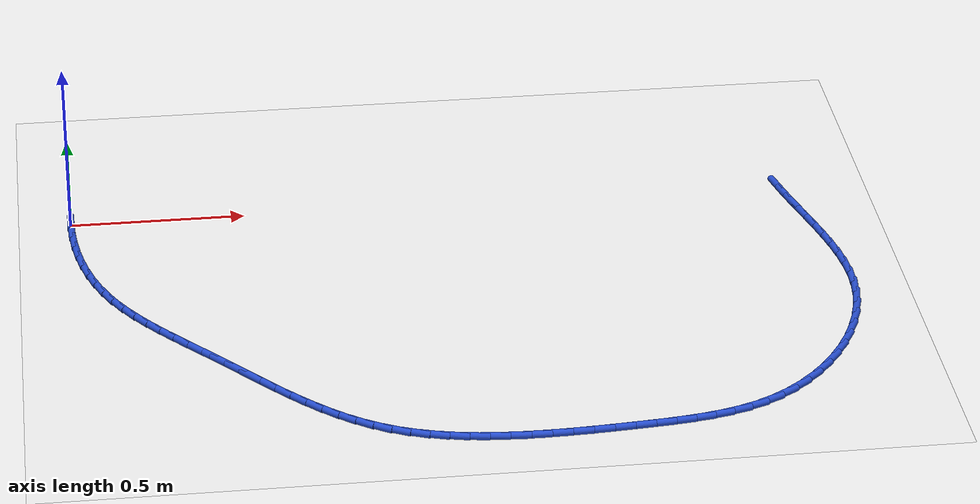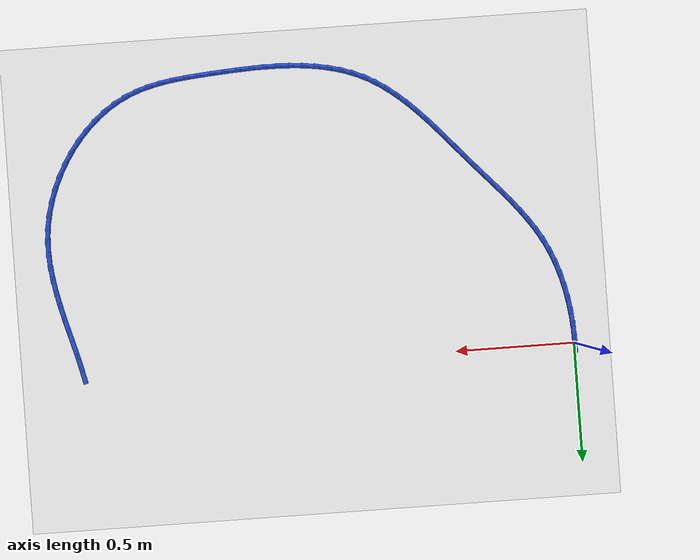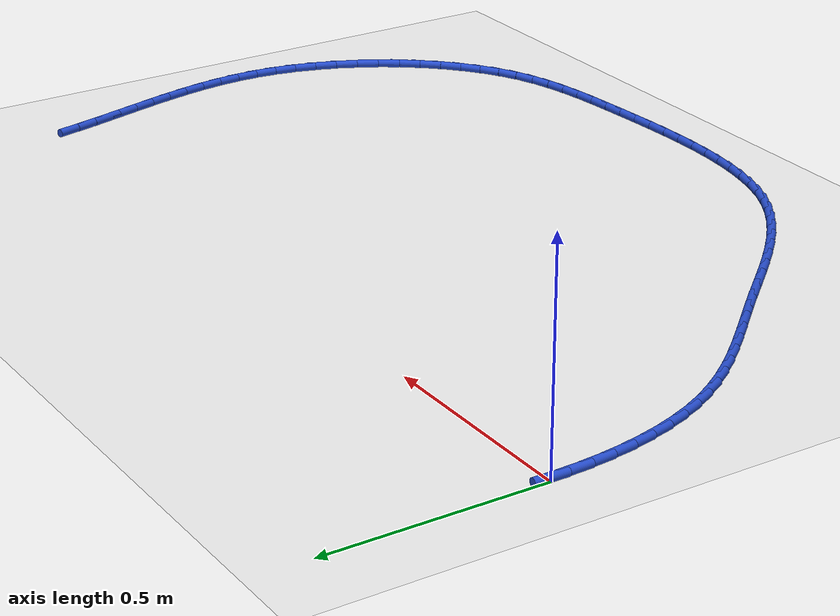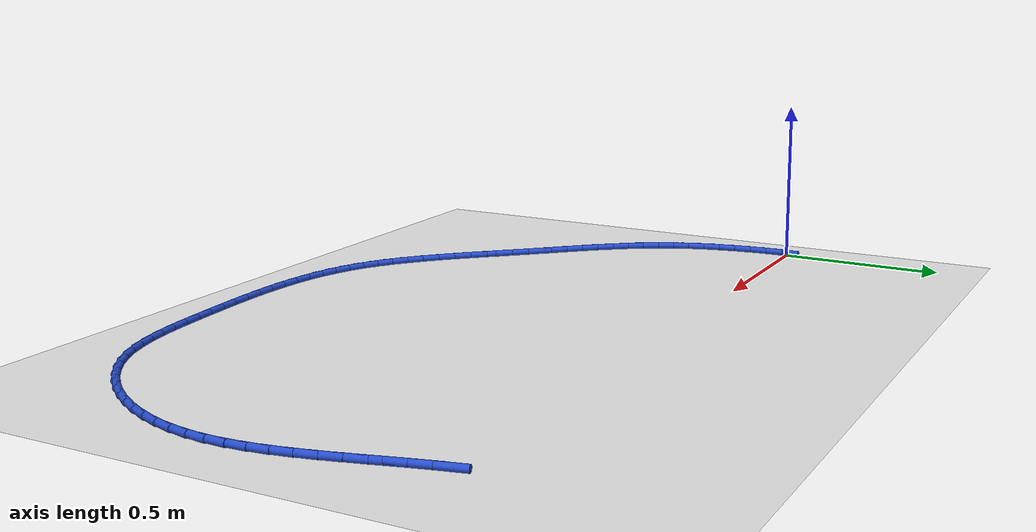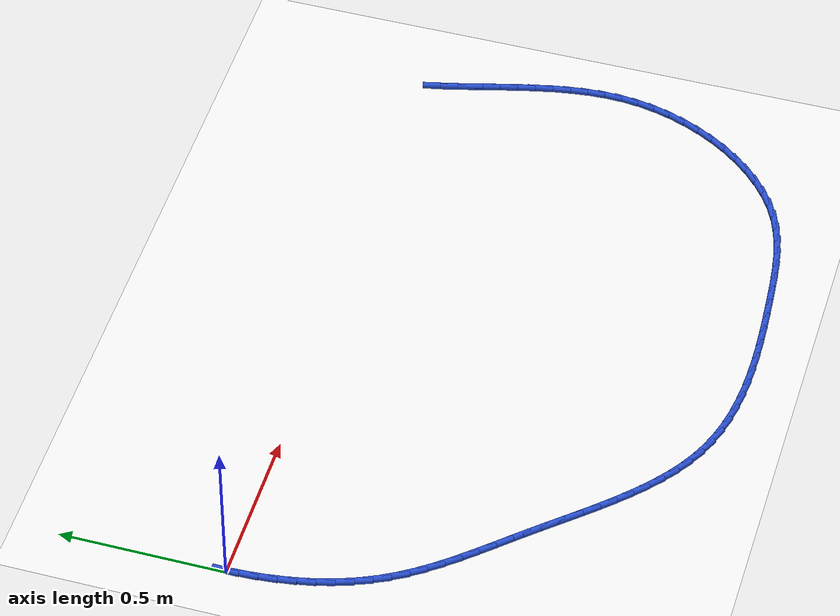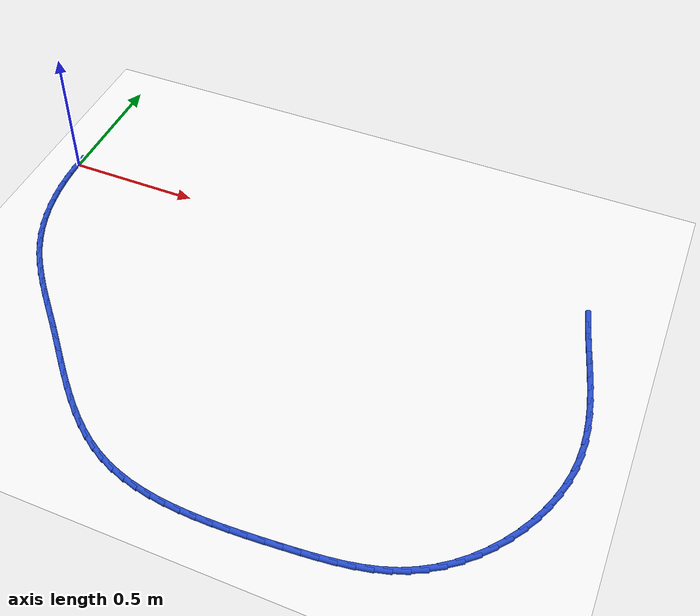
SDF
<sdf version="1.6">
 <world name="default">
  <model name="ground_plane">
   <static>1</static>
   <link name="link">
    <collision name="collision">
     <geometry><plane><normal>0 0 1</normal><size>100 100</size></plane></geometry>
     <surface><friction><ode><mu>100</mu><mu2>50</mu2></ode></friction></surface>
    </collision>
    <visual name="visual">
     <cast_shadows>0</cast_shadows>
     <geometry><plane><normal>0 0 1</normal><size>100 100</size></plane></geometry>
     <material>
      <script><uri>file://media/materials/scripts/gazebo.material</uri><name>Gazebo/WhiteGlow</name></script>
     </material>
    </visual>
   </link>
  </model>
  <model name="line">
   <link name="link_70">
    <pose>2.061421309169183 -0.014162147973191713 0.01 0 1.57 -1.3410188779451664</pose>
    <collision name="collision">
     <geometry><cylinder><radius>0.01</radius><length>0.08</length></cylinder></geometry>
    </collision>
    <visual name="visual">
     <material>
      <script><name>Gazebo/Blue</name><uri>file://media/materials/scripts/gazebo.material</uri></script>
     </material>
     <geometry><cylinder><radius>0.01</radius><length>0.08</length></cylinder></geometry>
    </visual>
   </link>
   <link name="link_71">
    <pose>2.0737125368260347 -0.06670928166333677 0.01 0 1.57 -1.31841641471967</pose>
    <collision name="collision">
     <geometry><cylinder><radius>0.01</radius><length>0.08</length></cylinder></geometry>
    </collision>
    <visual name="visual">
     <material>
      <script><name>Gazebo/Blue</name><uri>file://media/materials/scripts/gazebo.material</uri></script>
     </material>
     <geometry><cylinder><radius>0.01</radius><length>0.08</length></cylinder></geometry>
    </visual>
   </link>
   <link name="link_72">
    <pose>2.0873619624055793 -0.11963894817283285 0.01 0 1.57 -1.30717351102427</pose>
    <collision name="collision">
     <geometry><cylinder><radius>0.01</radius><length>0.08</length></cylinder></geometry>
    </collision>
    <visual name="visual">
     <material>
      <script><name>Gazebo/Blue</name><uri>file://media/materials/scripts/gazebo.material</uri></script>
     </material>
     <geometry><cylinder><radius>0.01</radius><length>0.08</length></cylinder></geometry>
    </visual>
   </link>
   <link name="link_73">
    <pose>2.1017423839942615 -0.17291861524340454 0.01 0 1.57 -1.3068586252918561</pose>
    <collision name="collision">
     <geometry><cylinder><radius>0.01</radius><length>0.08</length></cylinder></geometry>
    </collision>
    <visual name="visual">
     <material>
      <script><name>Gazebo/Blue</name><uri>file://media/materials/scripts/gazebo.material</uri></script>
     </material>
     <geometry><cylinder><radius>0.01</radius><length>0.08</length></cylinder></geometry>
    </visual>
   </link>
   <link name="link_74">
    <pose>2.116226599678525 -0.22651575061677398 0.01 0 1.57 -1.317272105890624</pose>
    <collision name="collision">
     <geometry><cylinder><radius>0.01</radius><length>0.08</length></cylinder></geometry>
    </collision>
    <visual name="visual">
     <material>
      <script><name>Gazebo/Blue</name><uri>file://media/materials/scripts/gazebo.material</uri></script>
     </material>
     <geometry><cylinder><radius>0.01</radius><length>0.08</length></cylinder></geometry>
    </visual>
   </link>
   <link name="link_75">
    <pose>2.130187407544815 -0.2803978220346656 0.01 0 1.57 -1.3384339842132726</pose>
    <collision name="collision">
     <geometry><cylinder><radius>0.01</radius><length>0.08</length></cylinder></geometry>
    </collision>
    <visual name="visual">
     <material>
      <script><name>Gazebo/Blue</name><uri>file://media/materials/scripts/gazebo.material</uri></script>
     </material>
     <geometry><cylinder><radius>0.01</radius><length>0.08</length></cylinder></geometry>
    </visual>
   </link>
   <link name="link_76">
    <pose>2.142997605679578 -0.3345322972388033 0.01 0 1.57 -1.370545138389545</pose>
    <collision name="collision">
     <geometry><cylinder><radius>0.01</radius><length>0.08</length></cylinder></geometry>
    </collision>
    <visual name="visual">
     <material>
      <script><name>Gazebo/Blue</name><uri>file://media/materials/scripts/gazebo.material</uri></script>
     </material>
     <geometry><cylinder><radius>0.01</radius><length>0.08</length></cylinder></geometry>
    </visual>
   </link>
   <link name="link_77">
    <pose>2.1540299921692574 -0.38888664397091055 0.01 0 1.57 -1.413916691522492</pose>
    <collision name="collision">
     <geometry><cylinder><radius>0.01</radius><length>0.08</length></cylinder></geometry>
    </collision>
    <visual name="visual">
     <material>
      <script><name>Gazebo/Blue</name><uri>file://media/materials/scripts/gazebo.material</uri></script>
     </material>
     <geometry><cylinder><radius>0.01</radius><length>0.08</length></cylinder></geometry>
    </visual>
   </link>
   <link name="link_78">
    <pose>2.1626573651002983 -0.4434283299727121 0.01 0 1.57 -1.468856284377047</pose>
    <collision name="collision">
     <geometry><cylinder><radius>0.01</radius><length>0.08</length></cylinder></geometry>
    </collision>
    <visual name="visual">
     <material>
      <script><name>Gazebo/Blue</name><uri>file://media/materials/scripts/gazebo.material</uri></script>
     </material>
     <geometry><cylinder><radius>0.01</radius><length>0.08</length></cylinder></geometry>
    </visual>
   </link>
   <link name="link_79">
    <pose>2.1682525225591456 -0.49812482298592986 0.01 0 1.57 -1.5354993621242259</pose>
    <collision name="collision">
     <geometry><cylinder><radius>0.01</radius><length>0.08</length></cylinder></geometry>
    </collision>
    <visual name="visual">
     <material>
      <script><name>Gazebo/Blue</name><uri>file://media/materials/scripts/gazebo.material</uri></script>
     </material>
     <geometry><cylinder><radius>0.01</radius><length>0.08</length></cylinder></geometry>
    </visual>
   </link>
   <link name="link_80">
    <pose>2.1701882626322453 -0.5529435907522886 0.01 0 1.57 1.5280079804477757</pose>
    <collision name="collision">
     <geometry><cylinder><radius>0.01</radius><length>0.08</length></cylinder></geometry>
    </collision>
    <visual name="visual">
     <material>
      <script><name>Gazebo/Blue</name><uri>file://media/materials/scripts/gazebo.material</uri></script>
     </material>
     <geometry><cylinder><radius>0.01</radius><length>0.08</length></cylinder></geometry>
    </visual>
   </link>
   <link name="link_81">
    <pose>2.167837383406041 -0.6078521010135118 0.01 0 1.57 1.4412242568355846</pose>
    <collision name="collision">
     <geometry><cylinder><radius>0.01</radius><length>0.08</length></cylinder></geometry>
    </collision>
    <visual name="visual">
     <material>
      <script><name>Gazebo/Blue</name><uri>file://media/materials/scripts/gazebo.material</uri></script>
     </material>
     <geometry><cylinder><radius>0.01</radius><length>0.08</length></cylinder></geometry>
    </visual>
   </link>
   <link name="link_82">
    <pose>2.160681670336421 -0.6627684314442793 0.01 0 1.57 1.3561177354574732</pose>
    <collision name="collision">
     <geometry><cylinder><radius>0.01</radius><length>0.08</length></cylinder></geometry>
    </collision>
    <visual name="visual">
     <material>
      <script><name>Gazebo/Blue</name><uri>file://media/materials/scripts/gazebo.material</uri></script>
     </material>
     <geometry><cylinder><radius>0.01</radius><length>0.08</length></cylinder></geometry>
    </visual>
   </link>
   <link name="link_83">
    <pose>2.1487810818068236 -0.7173486477099728 0.01 0 1.57 1.2750756018883729</pose>
    <collision name="collision">
     <geometry><cylinder><radius>0.01</radius><length>0.08</length></cylinder></geometry>
    </collision>
    <visual name="visual">
     <material>
      <script><name>Gazebo/Blue</name><uri>file://media/materials/scripts/gazebo.material</uri></script>
     </material>
     <geometry><cylinder><radius>0.01</radius><length>0.08</length></cylinder></geometry>
    </visual>
   </link>
   <link name="link_84">
    <pose>2.132386566361859 -0.7711622640075511 0.01 0 1.57 1.197012490439705</pose>
    <collision name="collision">
     <geometry><cylinder><radius>0.01</radius><length>0.08</length></cylinder></geometry>
    </collision>
    <visual name="visual">
     <material>
      <script><name>Gazebo/Blue</name><uri>file://media/materials/scripts/gazebo.material</uri></script>
     </material>
     <geometry><cylinder><radius>0.01</radius><length>0.08</length></cylinder></geometry>
    </visual>
   </link>
   <link name="link_85">
    <pose>2.1117491927426184 -0.8237787400642442 0.01 0 1.57 1.1208159324876013</pose>
    <collision name="collision">
     <geometry><cylinder><radius>0.01</radius><length>0.08</length></cylinder></geometry>
    </collision>
    <visual name="visual">
     <material>
      <script><name>Gazebo/Blue</name><uri>file://media/materials/scripts/gazebo.material</uri></script>
     </material>
     <geometry><cylinder><radius>0.01</radius><length>0.08</length></cylinder></geometry>
    </visual>
   </link>
   <link name="link_86">
    <pose>2.087120029690193 -0.8747675356072822 0.01 0 1.57 1.0453631732689241</pose>
    <collision name="collision">
     <geometry><cylinder><radius>0.01</radius><length>0.08</length></cylinder></geometry>
    </collision>
    <visual name="visual">
     <material>
      <script><name>Gazebo/Blue</name><uri>file://media/materials/scripts/gazebo.material</uri></script>
     </material>
     <geometry><cylinder><radius>0.01</radius><length>0.08</length></cylinder></geometry>
    </visual>
   </link>
   <link name="link_87">
    <pose>2.058750145945676 -0.9236981103638959 0.01 0 1.57 0.9695216509388501</pose>
    <collision name="collision">
     <geometry><cylinder><radius>0.01</radius><length>0.08</length></cylinder></geometry>
    </collision>
    <visual name="visual">
     <material>
      <script><name>Gazebo/Blue</name><uri>file://media/materials/scripts/gazebo.material</uri></script>
     </material>
     <geometry><cylinder><radius>0.01</radius><length>0.08</length></cylinder></geometry>
    </visual>
   </link>
   <link name="link_88">
    <pose>2.0268906102501587 -0.9701399240613131 0.01 0 1.57 0.8921433225217861</pose>
    <collision name="collision">
     <geometry><cylinder><radius>0.01</radius><length>0.08</length></cylinder></geometry>
    </collision>
    <visual name="visual">
     <material>
      <script><name>Gazebo/Blue</name><uri>file://media/materials/scripts/gazebo.material</uri></script>
     </material>
     <geometry><cylinder><radius>0.01</radius><length>0.08</length></cylinder></geometry>
    </visual>
   </link>
   <link name="link_89">
    <pose>1.9917924913447336 -1.0136624364267655 0.01 0 1.57 0.8120604178972595</pose>
    <collision name="collision">
     <geometry><cylinder><radius>0.01</radius><length>0.08</length></cylinder></geometry>
    </collision>
    <visual name="visual">
     <material>
      <script><name>Gazebo/Blue</name><uri>file://media/materials/scripts/gazebo.material</uri></script>
     </material>
     <geometry><cylinder><radius>0.01</radius><length>0.08</length></cylinder></geometry>
    </visual>
   </link>
   <link name="link_90">
    <pose>1.953706857970493 -1.0538351071874823 0.01 0 1.57 0.7280909554635799</pose>
    <collision name="collision">
     <geometry><cylinder><radius>0.01</radius><length>0.08</length></cylinder></geometry>
    </collision>
    <visual name="visual">
     <material>
      <script><name>Gazebo/Blue</name><uri>file://media/materials/scripts/gazebo.material</uri></script>
     </material>
     <geometry><cylinder><radius>0.01</radius><length>0.08</length></cylinder></geometry>
    </visual>
   </link>
   <link name="link_91">
    <pose>1.9128847788685277 -1.0902273960706945 0.01 0 1.57 0.6390644550922592</pose>
    <collision name="collision">
     <geometry><cylinder><radius>0.01</radius><length>0.08</length></cylinder></geometry>
    </collision>
    <visual name="visual">
     <material>
      <script><name>Gazebo/Blue</name><uri>file://media/materials/scripts/gazebo.material</uri></script>
     </material>
     <geometry><cylinder><radius>0.01</radius><length>0.08</length></cylinder></geometry>
    </visual>
   </link>
   <link name="link_92">
    <pose>1.8695773227799308 -1.1224087628036306 0.01 0 1.57 0.5438810712723876</pose>
    <collision name="collision">
     <geometry><cylinder><radius>0.01</radius><length>0.08</length></cylinder></geometry>
    </collision>
    <visual name="visual">
     <material>
      <script><name>Gazebo/Blue</name><uri>file://media/materials/scripts/gazebo.material</uri></script>
     </material>
     <geometry><cylinder><radius>0.01</radius><length>0.08</length></cylinder></geometry>
    </visual>
   </link>
   <link name="link_93">
    <pose>1.8240355584457948 -1.1499486671135215 0.01 0 1.57 0.44224293447413965</pose>
    <collision name="collision">
     <geometry><cylinder><radius>0.01</radius><length>0.08</length></cylinder></geometry>
    </collision>
    <visual name="visual">
     <material>
      <script><name>Gazebo/Blue</name><uri>file://media/materials/scripts/gazebo.material</uri></script>
     </material>
     <geometry><cylinder><radius>0.01</radius><length>0.08</length></cylinder></geometry>
    </visual>
   </link>
   <link name="link_94">
    <pose>1.7765092608484898 -1.1724534846550094 0.01 0 1.57 0.344627796717417</pose>
    <collision name="collision">
     <geometry><cylinder><radius>0.01</radius><length>0.08</length></cylinder></geometry>
    </collision>
    <visual name="visual">
     <material>
      <script><name>Gazebo/Blue</name><uri>file://media/materials/scripts/gazebo.material</uri></script>
     </material>
     <geometry><cylinder><radius>0.01</radius><length>0.08</length></cylinder></geometry>
    </visual>
   </link>
   <link name="link_95">
    <pose>1.727226687094853 -1.1901435790844834 0.01 0 1.57 0.26148018153442826</pose>
    <collision name="collision">
     <geometry><cylinder><radius>0.01</radius><length>0.08</length></cylinder></geometry>
    </collision>
    <visual name="visual">
     <material>
      <script><name>Gazebo/Blue</name><uri>file://media/materials/scripts/gazebo.material</uri></script>
     </material>
     <geometry><cylinder><radius>0.01</radius><length>0.08</length></cylinder></geometry>
    </visual>
   </link>
   <link name="link_96">
    <pose>1.6763983508601787 -1.203745602611738 0.01 0 1.57 0.19412908103877768</pose>
    <collision name="collision">
     <geometry><cylinder><radius>0.01</radius><length>0.08</length></cylinder></geometry>
    </collision>
    <visual name="visual">
     <material>
      <script><name>Gazebo/Blue</name><uri>file://media/materials/scripts/gazebo.material</uri></script>
     </material>
     <geometry><cylinder><radius>0.01</radius><length>0.08</length></cylinder></geometry>
    </visual>
   </link>
   <link name="link_97">
    <pose>1.6242342357633766 -1.2140013320000302 0.01 0 1.57 0.14260256393286388</pose>
    <collision name="collision">
     <geometry><cylinder><radius>0.01</radius><length>0.08</length></cylinder></geometry>
    </collision>
    <visual name="visual">
     <material>
      <script><name>Gazebo/Blue</name><uri>file://media/materials/scripts/gazebo.material</uri></script>
     </material>
     <geometry><cylinder><radius>0.01</radius><length>0.08</length></cylinder></geometry>
    </visual>
   </link>
   <link name="link_98">
    <pose>1.5709443254233586 -1.2216525440126191 0.01 0 1.57 0.10638393162127321</pose>
    <collision name="collision">
     <geometry><cylinder><radius>0.01</radius><length>0.08</length></cylinder></geometry>
    </collision>
    <visual name="visual">
     <material>
      <script><name>Gazebo/Blue</name><uri>file://media/materials/scripts/gazebo.material</uri></script>
     </material>
     <geometry><cylinder><radius>0.01</radius><length>0.08</length></cylinder></geometry>
    </visual>
   </link>
   <link name="link_99">
    <pose>1.5167386034590358 -1.2274410154127615 0.01 0 1.57 0.08479664106320367</pose>
    <collision name="collision">
     <geometry><cylinder><radius>0.01</radius><length>0.08</length></cylinder></geometry>
    </collision>
    <visual name="visual">
     <material>
      <script><name>Gazebo/Blue</name><uri>file://media/materials/scripts/gazebo.material</uri></script>
     </material>
     <geometry><cylinder><radius>0.01</radius><length>0.08</length></cylinder></geometry>
    </visual>
   </link>
   <link name="link_100">
    <pose>1.4618270534893179 -1.2321085229637163 0.01 0 1.57 0.0759849587349925</pose>
    <collision name="collision">
     <geometry><cylinder><radius>0.01</radius><length>0.08</length></cylinder></geometry>
    </collision>
    <visual name="visual">
     <material>
      <script><name>Gazebo/Blue</name><uri>file://media/materials/scripts/gazebo.material</uri></script>
     </material>
     <geometry><cylinder><radius>0.01</radius><length>0.08</length></cylinder></geometry>
    </visual>
   </link>
   <link name="link_101">
    <pose>1.4064190619545238 -1.2363268184511937 0.01 0 1.57 0.06800475014440872</pose>
    <collision name="collision">
     <geometry><cylinder><radius>0.01</radius><length>0.08</length></cylinder></geometry>
    </collision>
    <visual name="visual">
     <material>
      <script><name>Gazebo/Blue</name><uri>file://media/materials/scripts/gazebo.material</uri></script>
     </material>
     <geometry><cylinder><radius>0.01</radius><length>0.08</length></cylinder></geometry>
    </visual>
   </link>
   <link name="link_102">
    <pose>1.3507184969268389 -1.240120571517707 0.01 0 1.57 0.0545065774918814</pose>
    <collision name="collision">
     <geometry><cylinder><radius>0.01</radius><length>0.08</length></cylinder></geometry>
    </collision>
    <visual name="visual">
     <material>
      <script><name>Gazebo/Blue</name><uri>file://media/materials/scripts/gazebo.material</uri></script>
     </material>
     <geometry><cylinder><radius>0.01</radius><length>0.08</length></cylinder></geometry>
    </visual>
   </link>
   <link name="link_103">
    <pose>1.2949262431831299 -1.2431646315176812 0.01 0 1.57 0.035288521453908504</pose>
    <collision name="collision">
     <geometry><cylinder><radius>0.01</radius><length>0.08</length></cylinder></geometry>
    </collision>
    <visual name="visual">
     <material>
      <script><name>Gazebo/Blue</name><uri>file://media/materials/scripts/gazebo.material</uri></script>
     </material>
     <geometry><cylinder><radius>0.01</radius><length>0.08</length></cylinder></geometry>
    </visual>
   </link>
   <link name="link_104">
    <pose>1.2392431562794182 -1.2451304213783525 0.01 0 1.57 0.010093782436005823</pose>
    <collision name="collision">
     <geometry><cylinder><radius>0.01</radius><length>0.08</length></cylinder></geometry>
    </collision>
    <visual name="visual">
     <material>
      <script><name>Gazebo/Blue</name><uri>file://media/materials/scripts/gazebo.material</uri></script>
     </material>
     <geometry><cylinder><radius>0.01</radius><length>0.08</length></cylinder></geometry>
    </visual>
   </link>
   <link name="link_105">
    <pose>1.183870091771727 -1.2456893640269573 0.01 0 1.57 -0.021441021977332296</pose>
    <collision name="collision">
     <geometry><cylinder><radius>0.01</radius><length>0.08</length></cylinder></geometry>
    </collision>
    <visual name="visual">
     <material>
      <script><name>Gazebo/Blue</name><uri>file://media/materials/scripts/gazebo.material</uri></script>
     </material>
     <geometry><cylinder><radius>0.01</radius><length>0.08</length></cylinder></geometry>
    </visual>
   </link>
   <link name="link_106">
    <pose>1.1290079052160789 -1.244512882390732 0.01 0 1.57 -0.05977093352743796</pose>
    <collision name="collision">
     <geometry><cylinder><radius>0.01</radius><length>0.08</length></cylinder></geometry>
    </collision>
    <visual name="visual">
     <material>
      <script><name>Gazebo/Blue</name><uri>file://media/materials/scripts/gazebo.material</uri></script>
     </material>
     <geometry><cylinder><radius>0.01</radius><length>0.08</length></cylinder></geometry>
    </visual>
   </link>
   <link name="link_107">
    <pose>1.074857452168495 -1.241272399396913 0.01 0 1.57 -0.10541707057392966</pose>
    <collision name="collision">
     <geometry><cylinder><radius>0.01</radius><length>0.08</length></cylinder></geometry>
    </collision>
    <visual name="visual">
     <material>
      <script><name>Gazebo/Blue</name><uri>file://media/materials/scripts/gazebo.material</uri></script>
     </material>
     <geometry><cylinder><radius>0.01</radius><length>0.08</length></cylinder></geometry>
    </visual>
   </link>
   <link name="link_108">
    <pose>1.0216195881849979 -1.2356393379727366 0.01 0 1.57 -0.15892293027403814</pose>
    <collision name="collision">
     <geometry><cylinder><radius>0.01</radius><length>0.08</length></cylinder></geometry>
    </collision>
    <visual name="visual">
     <material>
      <script><name>Gazebo/Blue</name><uri>file://media/materials/scripts/gazebo.material</uri></script>
     </material>
     <geometry><cylinder><radius>0.01</radius><length>0.08</length></cylinder></geometry>
    </visual>
   </link>
   <link name="link_109">
    <pose>0.9694951688216085 -1.2272851210454394 0.01 0 1.57 -0.2207837299088897</pose>
    <collision name="collision">
     <geometry><cylinder><radius>0.01</radius><length>0.08</length></cylinder></geometry>
    </collision>
    <visual name="visual">
     <material>
      <script><name>Gazebo/Blue</name><uri>file://media/materials/scripts/gazebo.material</uri></script>
     </material>
     <geometry><cylinder><radius>0.01</radius><length>0.08</length></cylinder></geometry>
    </visual>
   </link>
   <link name="link_110">
    <pose>0.9186850496343513 -1.215881171542258 0.01 0 1.57 -0.2913408457290155</pose>
    <collision name="collision">
     <geometry><cylinder><radius>0.01</radius><length>0.08</length></cylinder></geometry>
    </collision>
    <visual name="visual">
     <material>
      <script><name>Gazebo/Blue</name><uri>file://media/materials/scripts/gazebo.material</uri></script>
     </material>
     <geometry><cylinder><radius>0.01</radius><length>0.08</length></cylinder></geometry>
    </visual>
   </link>
   <link name="link_111">
    <pose>0.8693900861792472 -1.201098912390428 0.01 0 1.57 -0.3706396879984952</pose>
    <collision name="collision">
     <geometry><cylinder><radius>0.01</radius><length>0.08</length></cylinder></geometry>
    </collision>
    <visual name="visual">
     <material>
      <script><name>Gazebo/Blue</name><uri>file://media/materials/scripts/gazebo.material</uri></script>
     </material>
     <geometry><cylinder><radius>0.01</radius><length>0.08</length></cylinder></geometry>
    </visual>
   </link>
   <link name="link_112">
    <pose>0.8218111340123185 -1.182609766517187 0.01 0 1.57 -0.4577781551451582</pose>
    <collision name="collision">
     <geometry><cylinder><radius>0.01</radius><length>0.08</length></cylinder></geometry>
    </collision>
    <visual name="visual">
     <material>
      <script><name>Gazebo/Blue</name><uri>file://media/materials/scripts/gazebo.material</uri></script>
     </material>
     <geometry><cylinder><radius>0.01</radius><length>0.08</length></cylinder></geometry>
    </visual>
   </link>
   <link name="link_113">
    <pose>0.7761373445105039 -1.1601069952917542 0.01 0 1.57 -0.5428997840926956</pose>
    <collision name="collision">
     <geometry><cylinder><radius>0.01</radius><length>0.08</length></cylinder></geometry>
    </collision>
    <visual name="visual">
     <material>
      <script><name>Gazebo/Blue</name><uri>file://media/materials/scripts/gazebo.material</uri></script>
     </material>
     <geometry><cylinder><radius>0.01</radius><length>0.08</length></cylinder></geometry>
    </visual>
   </link>
   <link name="link_114">
    <pose>0.7323439458440631 -1.1336830123438353 0.01 0 1.57 -0.6173275659129879</pose>
    <collision name="collision">
     <geometry><cylinder><radius>0.01</radius><length>0.08</length></cylinder></geometry>
    </collision>
    <visual name="visual">
     <material>
      <script><name>Gazebo/Blue</name><uri>file://media/materials/scripts/gazebo.material</uri></script>
     </material>
     <geometry><cylinder><radius>0.01</radius><length>0.08</length></cylinder></geometry>
    </visual>
   </link>
   <link name="link_115">
    <pose>0.690219075807661 -1.1037793170684973 0.01 0 1.57 -0.6805680729155653</pose>
    <collision name="collision">
     <geometry><cylinder><radius>0.01</radius><length>0.08</length></cylinder></geometry>
    </collision>
    <visual name="visual">
     <material>
      <script><name>Gazebo/Blue</name><uri>file://media/materials/scripts/gazebo.material</uri></script>
     </material>
     <geometry><cylinder><radius>0.01</radius><length>0.08</length></cylinder></geometry>
    </visual>
   </link>
   <link name="link_116">
    <pose>0.6495445648200447 -1.0708491775856421 0.01 0 1.57 -0.7328883027112316</pose>
    <collision name="collision">
     <geometry><cylinder><radius>0.01</radius><length>0.08</length></cylinder></geometry>
    </collision>
    <visual name="visual">
     <material>
      <script><name>Gazebo/Blue</name><uri>file://media/materials/scripts/gazebo.material</uri></script>
     </material>
     <geometry><cylinder><radius>0.01</radius><length>0.08</length></cylinder></geometry>
    </visual>
   </link>
   <link name="link_117">
    <pose>0.6101022432999623 -1.0353458620151725 0.01 0 1.57 -0.7748126028474405</pose>
    <collision name="collision">
     <geometry><cylinder><radius>0.01</radius><length>0.08</length></cylinder></geometry>
    </collision>
    <visual name="visual">
     <material>
      <script><name>Gazebo/Blue</name><uri>file://media/materials/scripts/gazebo.material</uri></script>
     </material>
     <geometry><cylinder><radius>0.01</radius><length>0.08</length></cylinder></geometry>
    </visual>
   </link>
   <link name="link_118">
    <pose>0.5716739416661624 -0.9977226384769907 0.01 0 1.57 -0.8069414002030648</pose>
    <collision name="collision">
     <geometry><cylinder><radius>0.01</radius><length>0.08</length></cylinder></geometry>
    </collision>
    <visual name="visual">
     <material>
      <script><name>Gazebo/Blue</name><uri>file://media/materials/scripts/gazebo.material</uri></script>
     </material>
     <geometry><cylinder><radius>0.01</radius><length>0.08</length></cylinder></geometry>
    </visual>
   </link>
   <link name="link_119">
    <pose>0.5340414903373922 -0.9584327750909993 0.01 0 1.57 -0.8298319349296397</pose>
    <collision name="collision">
     <geometry><cylinder><radius>0.01</radius><length>0.08</length></cylinder></geometry>
    </collision>
    <visual name="visual">
     <material>
      <script><name>Gazebo/Blue</name><uri>file://media/materials/scripts/gazebo.material</uri></script>
     </material>
     <geometry><cylinder><radius>0.01</radius><length>0.08</length></cylinder></geometry>
    </visual>
   </link>
   <link name="link_120">
    <pose>0.49698671973239966 -0.9179295399771008 0.01 0 1.57 -0.8439274586543289</pose>
    <collision name="collision">
     <geometry><cylinder><radius>0.01</radius><length>0.08</length></cylinder></geometry>
    </collision>
    <visual name="visual">
     <material>
      <script><name>Gazebo/Blue</name><uri>file://media/materials/scripts/gazebo.material</uri></script>
     </material>
     <geometry><cylinder><radius>0.01</radius><length>0.08</length></cylinder></geometry>
    </visual>
   </link>
   <link name="link_121">
    <pose>0.4602914602699324 -0.8766662012551968 0.01 0 1.57 -0.8495189684712348</pose>
    <collision name="collision">
     <geometry><cylinder><radius>0.01</radius><length>0.08</length></cylinder></geometry>
    </collision>
    <visual name="visual">
     <material>
      <script><name>Gazebo/Blue</name><uri>file://media/materials/scripts/gazebo.material</uri></script>
     </material>
     <geometry><cylinder><radius>0.01</radius><length>0.08</length></cylinder></geometry>
    </visual>
   </link>
   <link name="link_122">
    <pose>0.4237375423687376 -0.8350960270451895 0.01 0 1.57 -0.8467269240833116</pose>
    <collision name="collision">
     <geometry><cylinder><radius>0.01</radius><length>0.08</length></cylinder></geometry>
    </collision>
    <visual name="visual">
     <material>
      <script><name>Gazebo/Blue</name><uri>file://media/materials/scripts/gazebo.material</uri></script>
     </material>
     <geometry><cylinder><radius>0.01</radius><length>0.08</length></cylinder></geometry>
    </visual>
   </link>
   <link name="link_123">
    <pose>0.3871067964475644 -0.7936722854669822 0.01 0 1.57 -0.8365928616850776</pose>
    <collision name="collision">
     <geometry><cylinder><radius>0.01</radius><length>0.08</length></cylinder></geometry>
    </collision>
    <visual name="visual">
     <material>
      <script><name>Gazebo/Blue</name><uri>file://media/materials/scripts/gazebo.material</uri></script>
     </material>
     <geometry><cylinder><radius>0.01</radius><length>0.08</length></cylinder></geometry>
    </visual>
   </link>
   <link name="link_124">
    <pose>0.3502206559255428 -0.7528019439729461 0.01 0 1.57 -0.8298808341333117</pose>
    <collision name="collision">
     <geometry><cylinder><radius>0.01</radius><length>0.08</length></cylinder></geometry>
    </collision>
    <visual name="visual">
     <material>
      <script><name>Gazebo/Blue</name><uri>file://media/materials/scripts/gazebo.material</uri></script>
     </material>
     <geometry><cylinder><radius>0.01</radius><length>0.08</length></cylinder></geometry>
    </visual>
   </link>
   <link name="link_125">
    <pose>0.3132927629874108 -0.7124334308269229 0.01 0 1.57 -0.8329192949640594</pose>
    <collision name="collision">
     <geometry><cylinder><radius>0.01</radius><length>0.08</length></cylinder></geometry>
    </collision>
    <visual name="visual">
     <material>
      <script><name>Gazebo/Blue</name><uri>file://media/materials/scripts/gazebo.material</uri></script>
     </material>
     <geometry><cylinder><radius>0.01</radius><length>0.08</length></cylinder></geometry>
    </visual>
   </link>
   <link name="link_126">
    <pose>0.27676078671918575 -0.67225325991824 0.01 0 1.57 -0.8460127906316405</pose>
    <collision name="collision">
     <geometry><cylinder><radius>0.01</radius><length>0.08</length></cylinder></geometry>
    </collision>
    <visual name="visual">
     <material>
      <script><name>Gazebo/Blue</name><uri>file://media/materials/scripts/gazebo.material</uri></script>
     </material>
     <geometry><cylinder><radius>0.01</radius><length>0.08</length></cylinder></geometry>
    </visual>
   </link>
   <link name="link_127">
    <pose>0.24106501910709488 -0.6319448786506258 0.01 0 1.57 -0.8694576174660369</pose>
    <collision name="collision">
     <geometry><cylinder><radius>0.01</radius><length>0.08</length></cylinder></geometry>
    </collision>
    <visual name="visual">
     <material>
      <script><name>Gazebo/Blue</name><uri>file://media/materials/scripts/gazebo.material</uri></script>
     </material>
     <geometry><cylinder><radius>0.01</radius><length>0.08</length></cylinder></geometry>
    </visual>
   </link>
   <link name="link_128">
    <pose>0.2066457521373636 -0.5911917344278061 0.01 0 1.57 -0.9035777052122592</pose>
    <collision name="collision">
     <geometry><cylinder><radius>0.01</radius><length>0.08</length></cylinder></geometry>
    </collision>
    <visual name="visual">
     <material>
      <script><name>Gazebo/Blue</name><uri>file://media/materials/scripts/gazebo.material</uri></script>
     </material>
     <geometry><cylinder><radius>0.01</radius><length>0.08</length></cylinder></geometry>
    </visual>
   </link>
   <link name="link_129">
    <pose>0.17394327779621777 -0.5496772746535077 0.01 0 1.57 -0.9486481088368813</pose>
    <collision name="collision">
     <geometry><cylinder><radius>0.01</radius><length>0.08</length></cylinder></geometry>
    </collision>
    <visual name="visual">
     <material>
      <script><name>Gazebo/Blue</name><uri>file://media/materials/scripts/gazebo.material</uri></script>
     </material>
     <geometry><cylinder><radius>0.01</radius><length>0.08</length></cylinder></geometry>
    </visual>
   </link>
   <link name="link_130">
    <pose>0.14339788806988324 -0.5070849467314575 0.01 0 1.57 -1.004772190985854</pose>
    <collision name="collision">
     <geometry><cylinder><radius>0.01</radius><length>0.08</length></cylinder></geometry>
    </collision>
    <visual name="visual">
     <material>
      <script><name>Gazebo/Blue</name><uri>file://media/materials/scripts/gazebo.material</uri></script>
     </material>
     <geometry><cylinder><radius>0.01</radius><length>0.08</length></cylinder></geometry>
    </visual>
   </link>
   <link name="link_131">
    <pose>0.1154498749445855 -0.4630981980653812 0.01 0 1.57 -1.071610509819529</pose>
    <collision name="collision">
     <geometry><cylinder><radius>0.01</radius><length>0.08</length></cylinder></geometry>
    </collision>
    <visual name="visual">
     <material>
      <script><name>Gazebo/Blue</name><uri>file://media/materials/scripts/gazebo.material</uri></script>
     </material>
     <geometry><cylinder><radius>0.01</radius><length>0.08</length></cylinder></geometry>
    </visual>
   </link>
   <link name="link_132">
    <pose>0.09053539804792723 -0.4174041688602966 0.01 0 1.57 -1.1432196720421026</pose>
    <collision name="collision">
     <geometry><cylinder><radius>0.01</radius><length>0.08</length></cylinder></geometry>
    </collision>
    <visual name="visual">
     <material>
      <script><name>Gazebo/Blue</name><uri>file://media/materials/scripts/gazebo.material</uri></script>
     </material>
     <geometry><cylinder><radius>0.01</radius><length>0.08</length></cylinder></geometry>
    </visual>
   </link>
   <link name="link_133">
    <pose>0.06887874741890548 -0.3698793324263928 0.01 0 1.57 -1.2114442197893274</pose>
    <collision name="collision">
     <geometry><cylinder><radius>0.01</radius><length>0.08</length></cylinder></geometry>
    </collision>
    <visual name="visual">
     <material>
      <script><name>Gazebo/Blue</name><uri>file://media/materials/scripts/gazebo.material</uri></script>
     </material>
     <geometry><cylinder><radius>0.01</radius><length>0.08</length></cylinder></geometry>
    </visual>
   </link>
   <link name="link_134">
    <pose>0.05039503058952969 -0.3206764569611972 0.01 0 1.57 -1.2755756979193134</pose>
    <collision name="collision">
     <geometry><cylinder><radius>0.01</radius><length>0.08</length></cylinder></geometry>
    </collision>
    <visual name="visual">
     <material>
      <script><name>Gazebo/Blue</name><uri>file://media/materials/scripts/gazebo.material</uri></script>
     </material>
     <geometry><cylinder><radius>0.01</radius><length>0.08</length></cylinder></geometry>
    </visual>
   </link>
   <link name="link_135">
    <pose>0.03497488435612395 -0.26997017845554994 0.01 0 1.57 -1.3356597300243283</pose>
    <collision name="collision">
     <geometry><cylinder><radius>0.01</radius><length>0.08</length></cylinder></geometry>
    </collision>
    <visual name="visual">
     <material>
      <script><name>Gazebo/Blue</name><uri>file://media/materials/scripts/gazebo.material</uri></script>
     </material>
     <geometry><cylinder><radius>0.01</radius><length>0.08</length></cylinder></geometry>
    </visual>
   </link>
   <link name="link_136">
    <pose>0.022508945515013007 -0.21793513290029412 0.01 0 1.57 -1.3918468332746134</pose>
    <collision name="collision">
     <geometry><cylinder><radius>0.01</radius><length>0.08</length></cylinder></geometry>
    </collision>
    <visual name="visual">
     <material>
      <script><name>Gazebo/Blue</name><uri>file://media/materials/scripts/gazebo.material</uri></script>
     </material>
     <geometry><cylinder><radius>0.01</radius><length>0.08</length></cylinder></geometry>
    </visual>
   </link>
   <link name="link_137">
    <pose>0.01288785086252087 -0.1647459562862701 0.01 0 1.57 -1.4443600884526093</pose>
    <collision name="collision">
     <geometry><cylinder><radius>0.01</radius><length>0.08</length></cylinder></geometry>
    </collision>
    <visual name="visual">
     <material>
      <script><name>Gazebo/Blue</name><uri>file://media/materials/scripts/gazebo.material</uri></script>
     </material>
     <geometry><cylinder><radius>0.01</radius><length>0.08</length></cylinder></geometry>
    </visual>
   </link>
   <link name="link_138">
    <pose>0.0060022371949718075 -0.11057728460431901 0.01 0 1.57 -1.4934681590512289</pose>
    <collision name="collision">
     <geometry><cylinder><radius>0.01</radius><length>0.08</length></cylinder></geometry>
    </collision>
    <visual name="visual">
     <material>
      <script><name>Gazebo/Blue</name><uri>file://media/materials/scripts/gazebo.material</uri></script>
     </material>
     <geometry><cylinder><radius>0.01</radius><length>0.08</length></cylinder></geometry>
    </visual>
   </link>
   <link name="link_139">
    <pose>0.0017427413086901012 -0.05560375384528219 0.01 0 1.57 -1.5394644314640527</pose>
    <collision name="collision">
     <geometry><cylinder><radius>0.01</radius><length>0.08</length></cylinder></geometry>
    </collision>
    <visual name="visual">
     <material>
      <script><name>Gazebo/Blue</name><uri>file://media/materials/scripts/gazebo.material</uri></script>
     </material>
     <geometry><cylinder><radius>0.01</radius><length>0.08</length></cylinder></geometry>
    </visual>
   </link>
   <link name="link_140">
    <pose>1.214306433183765e-17 -4.163336342344337e-17 0.01 0 1.57 1.5589406946452182</pose>
    <collision name="collision">
     <geometry><cylinder><radius>0.01</radius><length>0.08</length></cylinder></geometry>
    </collision>
    <visual name="visual">
     <material>
      <script><name>Gazebo/Blue</name><uri>file://media/materials/scripts/gazebo.material</uri></script>
     </material>
     <geometry><cylinder><radius>0.01</radius><length>0.08</length></cylinder></geometry>
    </visual>
   </link>
  </model>
 </world>
</sdf>
